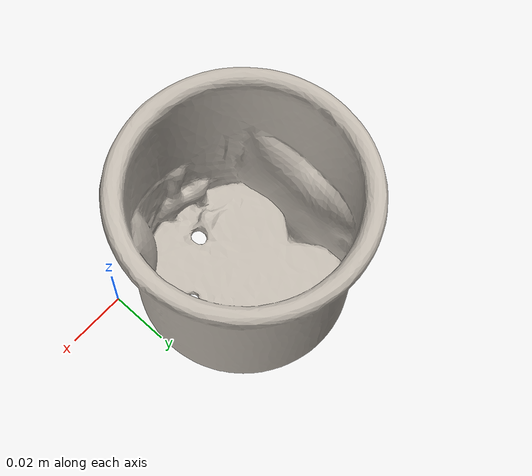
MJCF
<mujoco model="cups_f">
  <compiler angle="radian" meshdir="assets" texturedir="assets"/>
    <default>
        <default class="ycb_col">
            <geom contype="1" conaffinity="1" group="3" rgba=".4 .5 .6 1"/>
        </default>
        <default class="ycb_viz">
            <geom contype="0" conaffinity="0" type="mesh" mass="0"/>
        </default>
    </default>
  <asset>
    <texture type="2d" name="f_cups_tex" file="texture_map.png"/>
    <material name="f_cups_mat" texture="f_cups_tex" specular="0.5" shininess="0.5"/>
    <mesh file="textured.obj" name="f_cups"/>
    <mesh file="textured_collision_0.obj" name="f_cups_collision_0"/>
    <mesh file="textured_collision_1.obj" name="f_cups_collision_1"/>
    <mesh file="textured_collision_2.obj" name="f_cups_collision_2"/>
    <mesh file="textured_collision_3.obj" name="f_cups_collision_3"/>
    <mesh file="textured_collision_4.obj" name="f_cups_collision_4"/>
    <mesh file="textured_collision_5.obj" name="f_cups_collision_5"/>
    <mesh file="textured_collision_6.obj" name="f_cups_collision_6"/>
    <mesh file="textured_collision_7.obj" name="f_cups_collision_7"/>
    <mesh file="textured_collision_8.obj" name="f_cups_collision_8"/>
    <mesh file="textured_collision_9.obj" name="f_cups_collision_9"/>
    <mesh file="textured_collision_10.obj" name="f_cups_collision_10"/>
    <mesh file="textured_collision_11.obj" name="f_cups_collision_11"/>
    <mesh file="textured_collision_12.obj" name="f_cups_collision_12"/>
    <mesh file="textured_collision_13.obj" name="f_cups_collision_13"/>
    <mesh file="textured_collision_14.obj" name="f_cups_collision_14"/>
    <mesh file="textured_collision_15.obj" name="f_cups_collision_15"/>
    <mesh file="textured_collision_16.obj" name="f_cups_collision_16"/>
    <mesh file="textured_collision_17.obj" name="f_cups_collision_17"/>
    <mesh file="textured_collision_18.obj" name="f_cups_collision_18"/>
    <mesh file="textured_collision_19.obj" name="f_cups_collision_19"/>
    <mesh file="textured_collision_20.obj" name="f_cups_collision_20"/>
    <mesh file="textured_collision_21.obj" name="f_cups_collision_21"/>
    <mesh file="textured_collision_22.obj" name="f_cups_collision_22"/>
    <mesh file="textured_collision_23.obj" name="f_cups_collision_23"/>
    <mesh file="textured_collision_24.obj" name="f_cups_collision_24"/>
    <mesh file="textured_collision_25.obj" name="f_cups_collision_25"/>
    <mesh file="textured_collision_26.obj" name="f_cups_collision_26"/>
    <mesh file="textured_collision_27.obj" name="f_cups_collision_27"/>
    <mesh file="textured_collision_28.obj" name="f_cups_collision_28"/>
    <mesh file="textured_collision_29.obj" name="f_cups_collision_29"/>
    <mesh file="textured_collision_30.obj" name="f_cups_collision_30"/>
    <mesh file="textured_collision_31.obj" name="f_cups_collision_31"/>
    <mesh file="textured_collision_32.obj" name="f_cups_collision_32"/>
    <mesh file="textured_collision_33.obj" name="f_cups_collision_33"/>
    <mesh file="textured_collision_34.obj" name="f_cups_collision_34"/>
    <mesh file="textured_collision_35.obj" name="f_cups_collision_35"/>
    <mesh file="textured_collision_36.obj" name="f_cups_collision_36"/>
    <mesh file="textured_collision_37.obj" name="f_cups_collision_37"/>
    <mesh file="textured_collision_38.obj" name="f_cups_collision_38"/>
    <mesh file="textured_collision_39.obj" name="f_cups_collision_39"/>
    <mesh file="textured_collision_40.obj" name="f_cups_collision_40"/>
    <mesh file="textured_collision_41.obj" name="f_cups_collision_41"/>
    <mesh file="textured_collision_42.obj" name="f_cups_collision_42"/>
    <mesh file="textured_collision_43.obj" name="f_cups_collision_43"/>
    <mesh file="textured_collision_44.obj" name="f_cups_collision_44"/>
    <mesh file="textured_collision_45.obj" name="f_cups_collision_45"/>
    <mesh file="textured_collision_46.obj" name="f_cups_collision_46"/>
    <mesh file="textured_collision_47.obj" name="f_cups_collision_47"/>
    <mesh file="textured_collision_48.obj" name="f_cups_collision_48"/>
    <mesh file="textured_collision_49.obj" name="f_cups_collision_49"/>
    <mesh file="textured_collision_50.obj" name="f_cups_collision_50"/>
    <mesh file="textured_collision_51.obj" name="f_cups_collision_51"/>
    <mesh file="textured_collision_52.obj" name="f_cups_collision_52"/>
    <mesh file="textured_collision_53.obj" name="f_cups_collision_53"/>
    <mesh file="textured_collision_54.obj" name="f_cups_collision_54"/>
    <mesh file="textured_collision_55.obj" name="f_cups_collision_55"/>
    <mesh file="textured_collision_56.obj" name="f_cups_collision_56"/>
    <mesh file="textured_collision_57.obj" name="f_cups_collision_57"/>
    <mesh file="textured_collision_58.obj" name="f_cups_collision_58"/>
    <mesh file="textured_collision_59.obj" name="f_cups_collision_59"/>
  </asset>
  <worldbody>
      <geom material="f_cups_mat" mesh="f_cups" class="ycb_viz"/>
      <geom mesh="f_cups_collision_0" class="ycb_col" conaffinity="1" condim="4" friction="0.1 0.1 0.1" mass="0.00032738809993256414" rgba="1 1 1 1" solimp="0.99 0.99 0.01" solref=".001 0.1" type="mesh" group="3"/>
      <geom mesh="f_cups_collision_1" class="ycb_col" conaffinity="1" condim="4" friction="0.1 0.1 0.1" mass="0.00034575855759453683" rgba="1 1 1 1" solimp="0.99 0.99 0.01" solref=".001 0.1" type="mesh" group="3"/>
      <geom mesh="f_cups_collision_2" class="ycb_col" conaffinity="1" condim="4" friction="0.1 0.1 0.1" mass="0.00037611337034932843" rgba="1 1 1 1" solimp="0.99 0.99 0.01" solref=".001 0.1" type="mesh" group="3"/>
      <geom mesh="f_cups_collision_3" class="ycb_col" conaffinity="1" condim="4" friction="0.1 0.1 0.1" mass="0.0006557086276230295" rgba="1 1 1 1" solimp="0.99 0.99 0.01" solref=".001 0.1" type="mesh" group="3"/>
      <geom mesh="f_cups_collision_4" class="ycb_col" conaffinity="1" condim="4" friction="0.1 0.1 0.1" mass="0.0007244075142052174" rgba="1 1 1 1" solimp="0.99 0.99 0.01" solref=".001 0.1" type="mesh" group="3"/>
      <geom mesh="f_cups_collision_5" class="ycb_col" conaffinity="1" condim="4" friction="0.1 0.1 0.1" mass="0.00024928060116724933" rgba="1 1 1 1" solimp="0.99 0.99 0.01" solref=".001 0.1" type="mesh" group="3"/>
      <geom mesh="f_cups_collision_6" class="ycb_col" conaffinity="1" condim="4" friction="0.1 0.1 0.1" mass="0.00011974134078450179" rgba="1 1 1 1" solimp="0.99 0.99 0.01" solref=".001 0.1" type="mesh" group="3"/>
      <geom mesh="f_cups_collision_7" class="ycb_col" conaffinity="1" condim="4" friction="0.1 0.1 0.1" mass="0.0002353676602881382" rgba="1 1 1 1" solimp="0.99 0.99 0.01" solref=".001 0.1" type="mesh" group="3"/>
      <geom mesh="f_cups_collision_8" class="ycb_col" conaffinity="1" condim="4" friction="0.1 0.1 0.1" mass="7.858217417343353e-05" rgba="1 1 1 1" solimp="0.99 0.99 0.01" solref=".001 0.1" type="mesh" group="3"/>
      <geom mesh="f_cups_collision_9" class="ycb_col" conaffinity="1" condim="4" friction="0.1 0.1 0.1" mass="0.00022429278171967672" rgba="1 1 1 1" solimp="0.99 0.99 0.01" solref=".001 0.1" type="mesh" group="3"/>
      <geom mesh="f_cups_collision_10" class="ycb_col" conaffinity="1" condim="4" friction="0.1 0.1 0.1" mass="8.425789947176265e-05" rgba="1 1 1 1" solimp="0.99 0.99 0.01" solref=".001 0.1" type="mesh" group="3"/>
      <geom mesh="f_cups_collision_11" class="ycb_col" conaffinity="1" condim="4" friction="0.1 0.1 0.1" mass="0.00020009128275005038" rgba="1 1 1 1" solimp="0.99 0.99 0.01" solref=".001 0.1" type="mesh" group="3"/>
      <geom mesh="f_cups_collision_12" class="ycb_col" conaffinity="1" condim="4" friction="0.1 0.1 0.1" mass="0.00015041642487071555" rgba="1 1 1 1" solimp="0.99 0.99 0.01" solref=".001 0.1" type="mesh" group="3"/>
      <geom mesh="f_cups_collision_13" class="ycb_col" conaffinity="1" condim="4" friction="0.1 0.1 0.1" mass="0.00033303574598285966" rgba="1 1 1 1" solimp="0.99 0.99 0.01" solref=".001 0.1" type="mesh" group="3"/>
      <geom mesh="f_cups_collision_14" class="ycb_col" conaffinity="1" condim="4" friction="0.1 0.1 0.1" mass="0.000952454422538622" rgba="1 1 1 1" solimp="0.99 0.99 0.01" solref=".001 0.1" type="mesh" group="3"/>
      <geom mesh="f_cups_collision_15" class="ycb_col" conaffinity="1" condim="4" friction="0.1 0.1 0.1" mass="0.0004256083033465252" rgba="1 1 1 1" solimp="0.99 0.99 0.01" solref=".001 0.1" type="mesh" group="3"/>
      <geom mesh="f_cups_collision_16" class="ycb_col" conaffinity="1" condim="4" friction="0.1 0.1 0.1" mass="0.00024412188650516282" rgba="1 1 1 1" solimp="0.99 0.99 0.01" solref=".001 0.1" type="mesh" group="3"/>
      <geom mesh="f_cups_collision_17" class="ycb_col" conaffinity="1" condim="4" friction="0.1 0.1 0.1" mass="0.00011371727445916095" rgba="1 1 1 1" solimp="0.99 0.99 0.01" solref=".001 0.1" type="mesh" group="3"/>
      <geom mesh="f_cups_collision_18" class="ycb_col" conaffinity="1" condim="4" friction="0.1 0.1 0.1" mass="0.00012287065139083482" rgba="1 1 1 1" solimp="0.99 0.99 0.01" solref=".001 0.1" type="mesh" group="3"/>
      <geom mesh="f_cups_collision_19" class="ycb_col" conaffinity="1" condim="4" friction="0.1 0.1 0.1" mass="0.0007618998753087401" rgba="1 1 1 1" solimp="0.99 0.99 0.01" solref=".001 0.1" type="mesh" group="3"/>
      <geom mesh="f_cups_collision_20" class="ycb_col" conaffinity="1" condim="4" friction="0.1 0.1 0.1" mass="0.0006667304814358587" rgba="1 1 1 1" solimp="0.99 0.99 0.01" solref=".001 0.1" type="mesh" group="3"/>
      <geom mesh="f_cups_collision_21" class="ycb_col" conaffinity="1" condim="4" friction="0.1 0.1 0.1" mass="0.0007747807805915462" rgba="1 1 1 1" solimp="0.99 0.99 0.01" solref=".001 0.1" type="mesh" group="3"/>
      <geom mesh="f_cups_collision_22" class="ycb_col" conaffinity="1" condim="4" friction="0.1 0.1 0.1" mass="0.0004864186525884937" rgba="1 1 1 1" solimp="0.99 0.99 0.01" solref=".001 0.1" type="mesh" group="3"/>
      <geom mesh="f_cups_collision_23" class="ycb_col" conaffinity="1" condim="4" friction="0.1 0.1 0.1" mass="0.00017727154062409538" rgba="1 1 1 1" solimp="0.99 0.99 0.01" solref=".001 0.1" type="mesh" group="3"/>
      <geom mesh="f_cups_collision_24" class="ycb_col" conaffinity="1" condim="4" friction="0.1 0.1 0.1" mass="0.00018048064873437796" rgba="1 1 1 1" solimp="0.99 0.99 0.01" solref=".001 0.1" type="mesh" group="3"/>
      <geom mesh="f_cups_collision_25" class="ycb_col" conaffinity="1" condim="4" friction="0.1 0.1 0.1" mass="0.0008558096655212225" rgba="1 1 1 1" solimp="0.99 0.99 0.01" solref=".001 0.1" type="mesh" group="3"/>
      <geom mesh="f_cups_collision_26" class="ycb_col" conaffinity="1" condim="4" friction="0.1 0.1 0.1" mass="0.0002143087922864097" rgba="1 1 1 1" solimp="0.99 0.99 0.01" solref=".001 0.1" type="mesh" group="3"/>
      <geom mesh="f_cups_collision_27" class="ycb_col" conaffinity="1" condim="4" friction="0.1 0.1 0.1" mass="0.0009274272185728735" rgba="1 1 1 1" solimp="0.99 0.99 0.01" solref=".001 0.1" type="mesh" group="3"/>
      <geom mesh="f_cups_collision_28" class="ycb_col" conaffinity="1" condim="4" friction="0.1 0.1 0.1" mass="0.0012583613840099477" rgba="1 1 1 1" solimp="0.99 0.99 0.01" solref=".001 0.1" type="mesh" group="3"/>
      <geom mesh="f_cups_collision_29" class="ycb_col" conaffinity="1" condim="4" friction="0.1 0.1 0.1" mass="7.330865623999927e-05" rgba="1 1 1 1" solimp="0.99 0.99 0.01" solref=".001 0.1" type="mesh" group="3"/>
      <geom mesh="f_cups_collision_30" class="ycb_col" conaffinity="1" condim="4" friction="0.1 0.1 0.1" mass="0.0002047040091663453" rgba="1 1 1 1" solimp="0.99 0.99 0.01" solref=".001 0.1" type="mesh" group="3"/>
      <geom mesh="f_cups_collision_31" class="ycb_col" conaffinity="1" condim="4" friction="0.1 0.1 0.1" mass="0.002649904368688292" rgba="1 1 1 1" solimp="0.99 0.99 0.01" solref=".001 0.1" type="mesh" group="3"/>
      <geom mesh="f_cups_collision_32" class="ycb_col" conaffinity="1" condim="4" friction="0.1 0.1 0.1" mass="0.00010204164080827983" rgba="1 1 1 1" solimp="0.99 0.99 0.01" solref=".001 0.1" type="mesh" group="3"/>
      <geom mesh="f_cups_collision_33" class="ycb_col" conaffinity="1" condim="4" friction="0.1 0.1 0.1" mass="0.0003540886565782687" rgba="1 1 1 1" solimp="0.99 0.99 0.01" solref=".001 0.1" type="mesh" group="3"/>
      <geom mesh="f_cups_collision_34" class="ycb_col" conaffinity="1" condim="4" friction="0.1 0.1 0.1" mass="0.0003099895996404736" rgba="1 1 1 1" solimp="0.99 0.99 0.01" solref=".001 0.1" type="mesh" group="3"/>
      <geom mesh="f_cups_collision_35" class="ycb_col" conaffinity="1" condim="4" friction="0.1 0.1 0.1" mass="0.0003428563049315863" rgba="1 1 1 1" solimp="0.99 0.99 0.01" solref=".001 0.1" type="mesh" group="3"/>
      <geom mesh="f_cups_collision_36" class="ycb_col" conaffinity="1" condim="4" friction="0.1 0.1 0.1" mass="0.0015459122623774201" rgba="1 1 1 1" solimp="0.99 0.99 0.01" solref=".001 0.1" type="mesh" group="3"/>
      <geom mesh="f_cups_collision_37" class="ycb_col" conaffinity="1" condim="4" friction="0.1 0.1 0.1" mass="0.0011573699083260187" rgba="1 1 1 1" solimp="0.99 0.99 0.01" solref=".001 0.1" type="mesh" group="3"/>
      <geom mesh="f_cups_collision_38" class="ycb_col" conaffinity="1" condim="4" friction="0.1 0.1 0.1" mass="0.00028601964128742923" rgba="1 1 1 1" solimp="0.99 0.99 0.01" solref=".001 0.1" type="mesh" group="3"/>
      <geom mesh="f_cups_collision_39" class="ycb_col" conaffinity="1" condim="4" friction="0.1 0.1 0.1" mass="0.00027605997966251343" rgba="1 1 1 1" solimp="0.99 0.99 0.01" solref=".001 0.1" type="mesh" group="3"/>
      <geom mesh="f_cups_collision_40" class="ycb_col" conaffinity="1" condim="4" friction="0.1 0.1 0.1" mass="0.00018695471016349352" rgba="1 1 1 1" solimp="0.99 0.99 0.01" solref=".001 0.1" type="mesh" group="3"/>
      <geom mesh="f_cups_collision_41" class="ycb_col" conaffinity="1" condim="4" friction="0.1 0.1 0.1" mass="0.0004991369621421987" rgba="1 1 1 1" solimp="0.99 0.99 0.01" solref=".001 0.1" type="mesh" group="3"/>
      <geom mesh="f_cups_collision_42" class="ycb_col" conaffinity="1" condim="4" friction="0.1 0.1 0.1" mass="0.0003490785567066311" rgba="1 1 1 1" solimp="0.99 0.99 0.01" solref=".001 0.1" type="mesh" group="3"/>
      <geom mesh="f_cups_collision_43" class="ycb_col" conaffinity="1" condim="4" friction="0.1 0.1 0.1" mass="0.0003928637211800725" rgba="1 1 1 1" solimp="0.99 0.99 0.01" solref=".001 0.1" type="mesh" group="3"/>
      <geom mesh="f_cups_collision_44" class="ycb_col" conaffinity="1" condim="4" friction="0.1 0.1 0.1" mass="0.0006871678138377375" rgba="1 1 1 1" solimp="0.99 0.99 0.01" solref=".001 0.1" type="mesh" group="3"/>
      <geom mesh="f_cups_collision_45" class="ycb_col" conaffinity="1" condim="4" friction="0.1 0.1 0.1" mass="0.0003581276531809804" rgba="1 1 1 1" solimp="0.99 0.99 0.01" solref=".001 0.1" type="mesh" group="3"/>
      <geom mesh="f_cups_collision_46" class="ycb_col" conaffinity="1" condim="4" friction="0.1 0.1 0.1" mass="0.0004033697128381112" rgba="1 1 1 1" solimp="0.99 0.99 0.01" solref=".001 0.1" type="mesh" group="3"/>
      <geom mesh="f_cups_collision_47" class="ycb_col" conaffinity="1" condim="4" friction="0.1 0.1 0.1" mass="0.0005178727303287549" rgba="1 1 1 1" solimp="0.99 0.99 0.01" solref=".001 0.1" type="mesh" group="3"/>
      <geom mesh="f_cups_collision_48" class="ycb_col" conaffinity="1" condim="4" friction="0.1 0.1 0.1" mass="0.0003359350537719672" rgba="1 1 1 1" solimp="0.99 0.99 0.01" solref=".001 0.1" type="mesh" group="3"/>
      <geom mesh="f_cups_collision_49" class="ycb_col" conaffinity="1" condim="4" friction="0.1 0.1 0.1" mass="0.0002778355846384966" rgba="1 1 1 1" solimp="0.99 0.99 0.01" solref=".001 0.1" type="mesh" group="3"/>
      <geom mesh="f_cups_collision_50" class="ycb_col" conaffinity="1" condim="4" friction="0.1 0.1 0.1" mass="0.0005354940959160856" rgba="1 1 1 1" solimp="0.99 0.99 0.01" solref=".001 0.1" type="mesh" group="3"/>
      <geom mesh="f_cups_collision_51" class="ycb_col" conaffinity="1" condim="4" friction="0.1 0.1 0.1" mass="0.0004818421019007841" rgba="1 1 1 1" solimp="0.99 0.99 0.01" solref=".001 0.1" type="mesh" group="3"/>
      <geom mesh="f_cups_collision_52" class="ycb_col" conaffinity="1" condim="4" friction="0.1 0.1 0.1" mass="0.00011768505757541286" rgba="1 1 1 1" solimp="0.99 0.99 0.01" solref=".001 0.1" type="mesh" group="3"/>
      <geom mesh="f_cups_collision_53" class="ycb_col" conaffinity="1" condim="4" friction="0.1 0.1 0.1" mass="0.000144067721663575" rgba="1 1 1 1" solimp="0.99 0.99 0.01" solref=".001 0.1" type="mesh" group="3"/>
      <geom mesh="f_cups_collision_54" class="ycb_col" conaffinity="1" condim="4" friction="0.1 0.1 0.1" mass="9.059000437684163e-05" rgba="1 1 1 1" solimp="0.99 0.99 0.01" solref=".001 0.1" type="mesh" group="3"/>
      <geom mesh="f_cups_collision_55" class="ycb_col" conaffinity="1" condim="4" friction="0.1 0.1 0.1" mass="0.00010936806221854588" rgba="1 1 1 1" solimp="0.99 0.99 0.01" solref=".001 0.1" type="mesh" group="3"/>
      <geom mesh="f_cups_collision_56" class="ycb_col" conaffinity="1" condim="4" friction="0.1 0.1 0.1" mass="0.00013166270455498803" rgba="1 1 1 1" solimp="0.99 0.99 0.01" solref=".001 0.1" type="mesh" group="3"/>
      <geom mesh="f_cups_collision_57" class="ycb_col" conaffinity="1" condim="4" friction="0.1 0.1 0.1" mass="0.0002343279760905679" rgba="1 1 1 1" solimp="0.99 0.99 0.01" solref=".001 0.1" type="mesh" group="3"/>
      <geom mesh="f_cups_collision_58" class="ycb_col" conaffinity="1" condim="4" friction="0.1 0.1 0.1" mass="0.0004154874744816345" rgba="1 1 1 1" solimp="0.99 0.99 0.01" solref=".001 0.1" type="mesh" group="3"/>
      <geom mesh="f_cups_collision_59" class="ycb_col" conaffinity="1" condim="4" friction="0.1 0.1 0.1" mass="0.00016217361589956086" rgba="1 1 1 1" solimp="0.99 0.99 0.01" solref=".001 0.1" type="mesh" group="3"/>
  </worldbody>
</mujoco>
